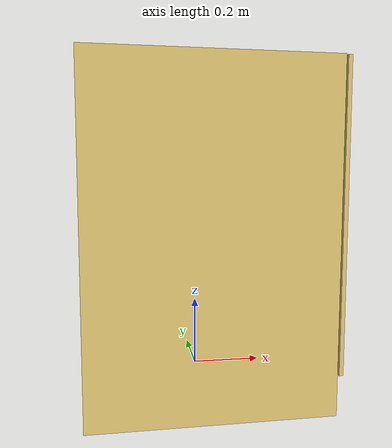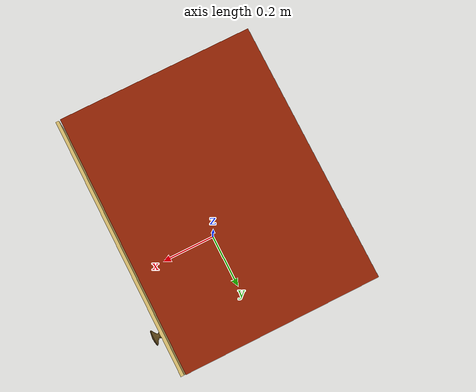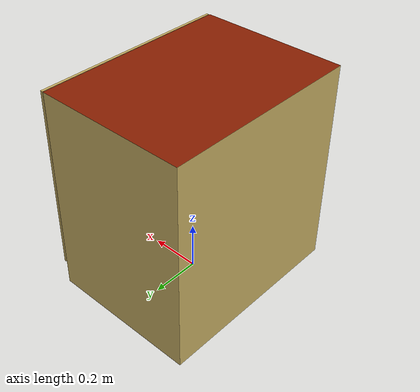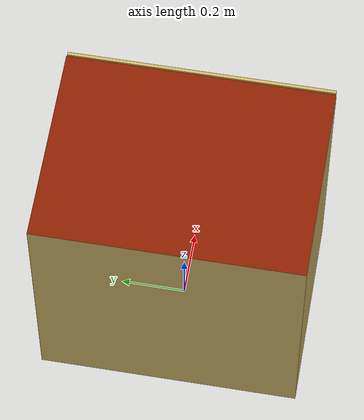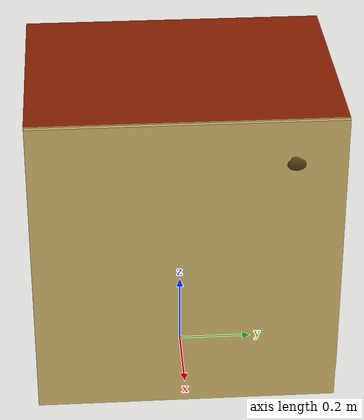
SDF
<?xml version="1.0" ?>
<sdf version="1.0">
  <model name="cupboard">
    <static>true</static>
    <link name="cupboard">
      <collision name="cupboard">
        <pose>0 0 0.4250 0 0 0</pose>
        <geometry>
          <box>
            <size>0.6400 0.8000 0.8500</size>
          </box>
        </geometry>
      </collision>

      <visual name="cupboard_mesh">
	  <cast_shadows>true</cast_shadows>
        <geometry>
          <mesh>
	        <uri>model://cupboard/meshes/model.dae</uri>
	      </mesh>
        </geometry>
      </visual>
    </link>
  </model>
</sdf>
